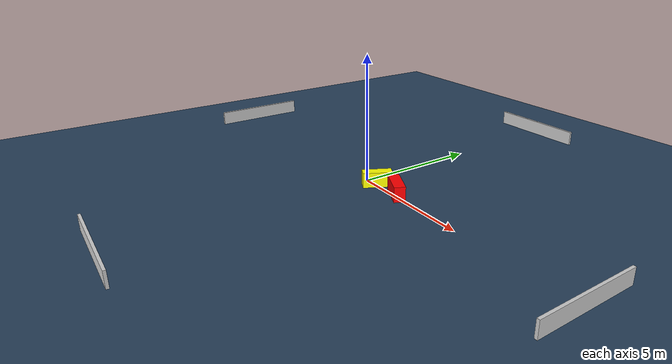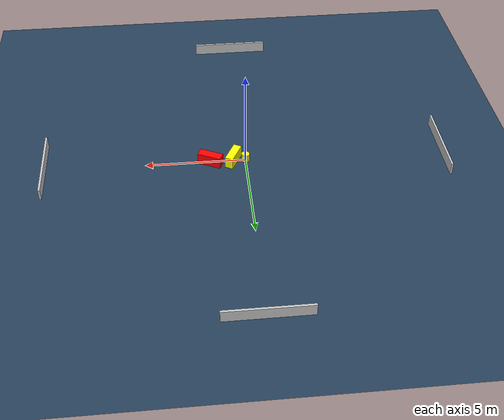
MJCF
<?xml version="1.0" ?>
<mujoco model="generated_environment">
  <option timestep="0.01" integrator="RK4" cone="elliptic"/>
  <default>
    <geom density="1"/>
  </default>
  <asset>
    <texture builtin="gradient" height="3072" name="skybox" rgb1="0.3 0.5 0.7" rgb2="0 0 0" type="skybox" width="512"/>
    <texture builtin="checker" height="300" name="groundplane" rgb1="0.2 0.3 0.4" rgb2="0.1 0.2 0.3" type="2d" width="300"/>
    <material name="groundplane" reflectance="0.2" texrepeat="5 5" texture="groundplane"/>
  </asset>
  <worldbody>
    <light dir="0 0 -1" directional="true" pos="0 0 1.5"/>
    <geom condim="3" friction="0.5 0.005 0.001" material="groundplane" name="floor" pos="0 0 0" size="0 0 0.05" type="plane"/>
    <body name="walls">
      <geom name="wall_1" condim="4" pos="-10.0 0.0 0.3" rgba="0.800000011920929 0.800000011920929 0.800000011920929 1.0" size="0.05 2.0 0.3" type="box"/>
      <geom name="wall_2" condim="4" pos="10.0 0.0 0.3" rgba="0.800000011920929 0.800000011920929 0.800000011920929 1.0" size="0.05 2.0 0.3" type="box"/>
      <geom name="wall_3" condim="4" pos="0.0 -10.0 0.3" rgba="0.800000011920929 0.800000011920929 0.800000011920929 1.0" size="2.0 0.05 0.3" type="box"/>
      <geom name="wall_4" condim="4" pos="0.0 10.0 0.3" rgba="0.800000011920929 0.800000011920929 0.800000011920929 1.0" size="2.0 0.05 0.3" type="box"/>
    </body>
    <body name="robot">
      <joint name="joint_x" type="slide" pos="0 0 0" axis="1 0 0"/>
      <joint name="joint_y" type="slide" pos="0 0 0" axis="0 1 0"/>
      <geom name="robot" type="cylinder" pos="0.0 0.0 0.2" size="0.2 0.2 0.0" mass="5.0" friction="1.0 0.005 0.0001" condim="4" rgba="1.0 1.0 0.0 1.0"/>
    </body>
    <body name="obstacle_1_movable">
      <geom name="obstacle_1_movable" condim="4" pos="0.613829870681775 0.046852442181298116 0.3" euler="0 0 332.5067626871873" friction="0.0 0.005 0.001" rgba="1.0 1.0 0.0 1.0" size="0.20148145394338302 0.5723811316966273 0.3" type="box" mass="0.1"/>
      <joint type="free"/>
    </body>
    <body name="obstacle_2_static">
      <geom name="obstacle_2_static" condim="4" pos="1.767056904562378 0.09832329904424382 0.3" euler="0 0 334.56997254365905" friction="0.0 0.005 0.001" rgba="1.0 0.0 0.0 1.0" size="0.5967971220049373 0.21845054896271013 0.3" type="box"/>
    </body>
  </worldbody>
  <actuator>
    <motor name="actuator_x" joint="joint_x" gear="1" ctrlrange="-1 1"/>
    <motor name="actuator_y" joint="joint_y" gear="1" ctrlrange="-1 1"/>
  </actuator>
</mujoco>
